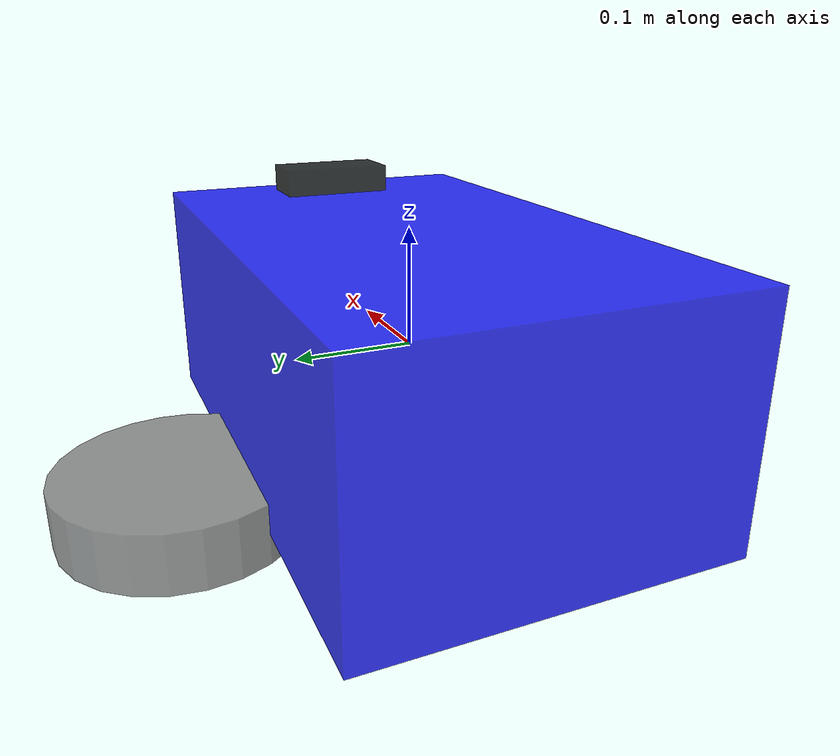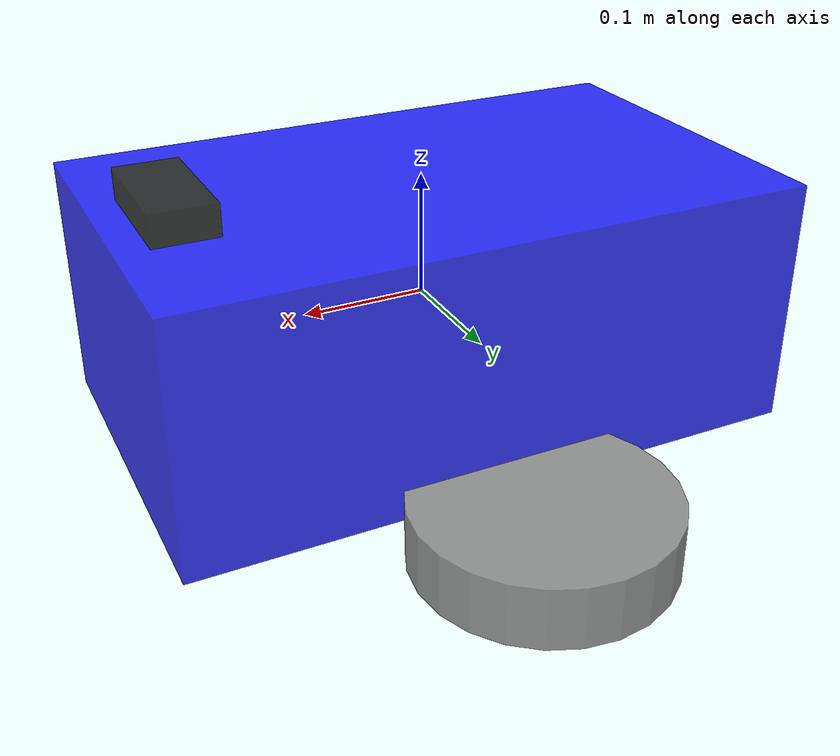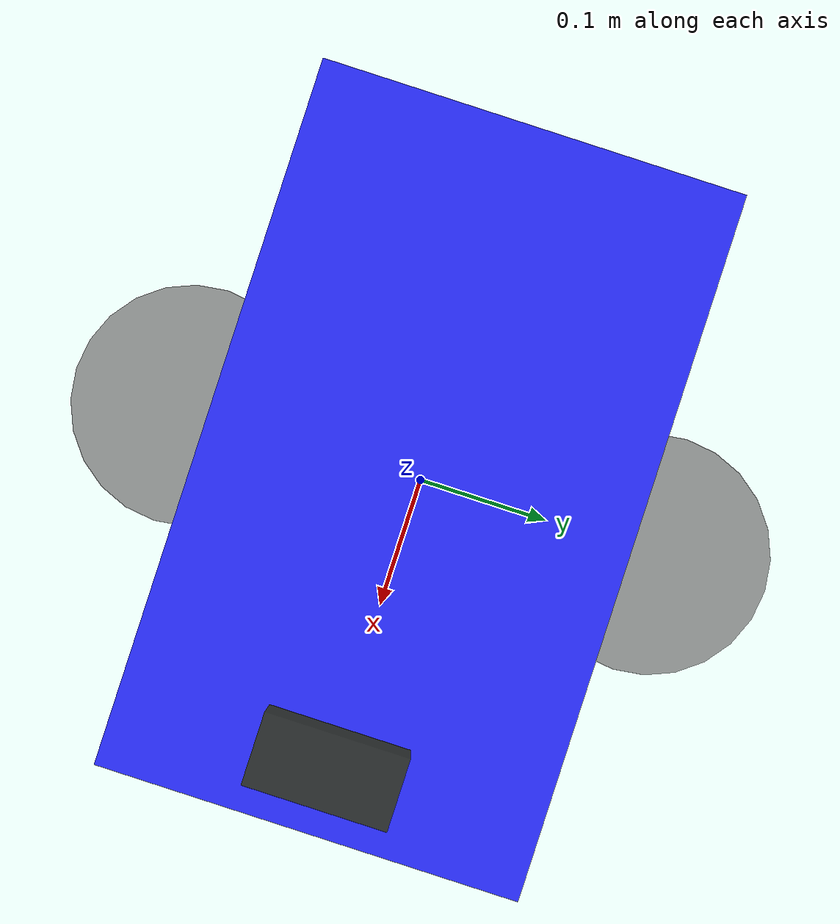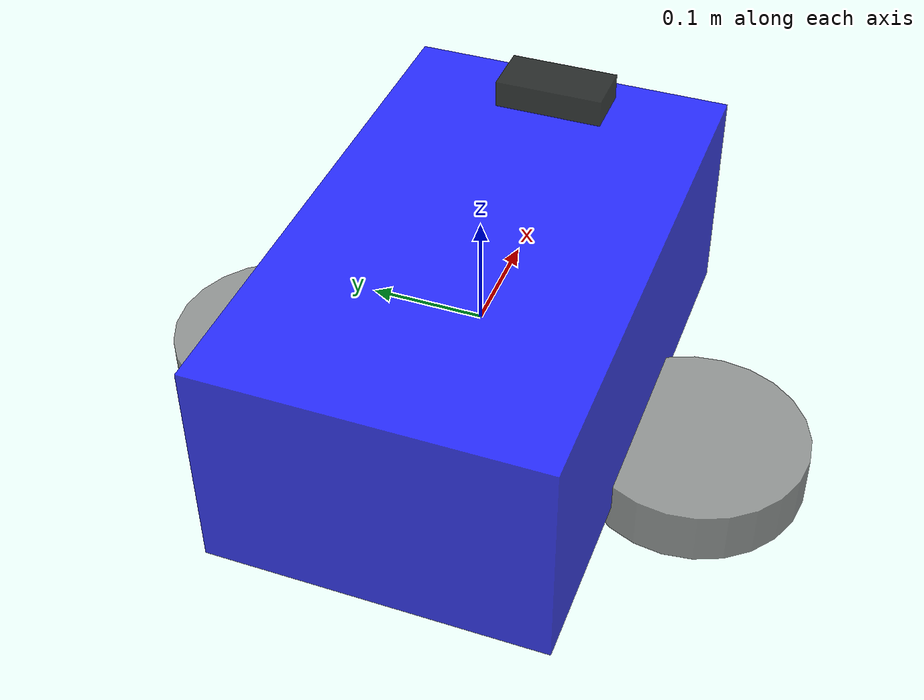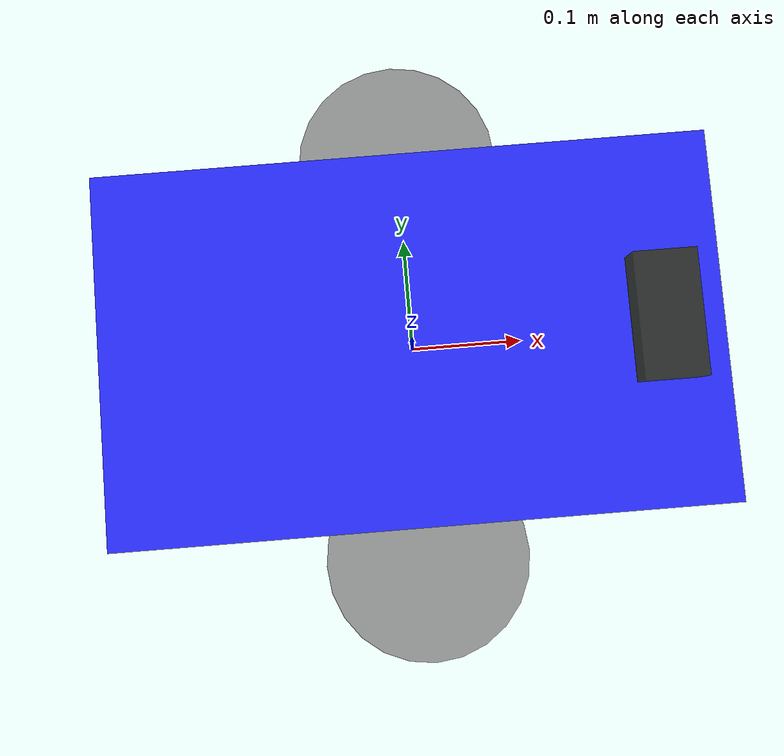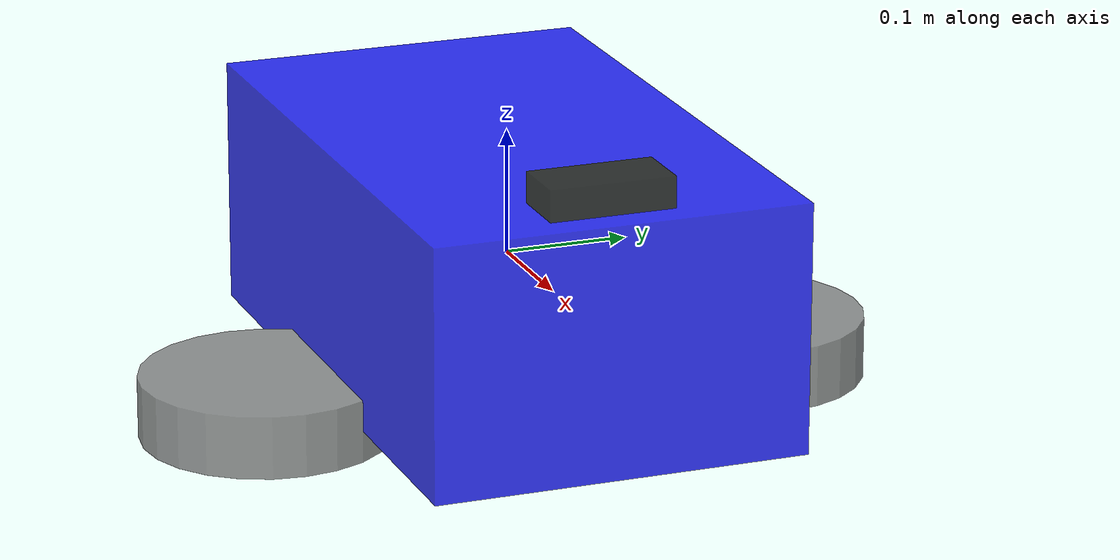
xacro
<?xml version="1.0" ?>
<robot name="simple_robot" xmlns:xacro="http://www.ros.org/wiki/xacro">

  <!-- Base link -->
  <link name="base_link">
    <visual>
      <geometry>
        <box size="0.5 0.3 0.2"/>
      </geometry>
      <material name="blue">
        <color rgba="0 0 1 0.8"/>
      </material>
    </visual>
    <collision>
      <geometry>
        <box size="0.5 0.3 0.2"/>
      </geometry>
    </collision>
    <inertial>
      <mass value="1.0"/>
      <inertia ixx="0.1" ixy="0.0" ixz="0.0" iyy="0.1" iyz="0.0" izz="0.1"/>
    </inertial>
  </link>

  <!-- Camera link -->
  <joint name="camera_joint" type="fixed">
    <parent link="base_link"/>
    <child link="camera_link"/>
    <origin xyz="0.2 0 0.1" rpy="0 0 0"/>
  </joint>

  <link name="camera_link">
    <visual>
      <geometry>
        <box size="0.05 0.1 0.05"/>
      </geometry>
      <material name="black">
        <color rgba="0 0 0 0.8"/>
      </material>
    </visual>
  </link>

  <!-- Wheels -->
  <joint name="wheel_left_joint" type="continuous">
    <parent link="base_link"/>
    <child link="wheel_left"/>
    <origin xyz="0 0.2 -0.1" rpy="0 0 0"/>
    <axis xyz="0 1 0"/>
  </joint>

  <link name="wheel_left">
    <visual>
      <geometry>
        <cylinder radius="0.1" length="0.05"/>
      </geometry>
      <material name="gray">
        <color rgba="0.5 0.5 0.5 0.8"/>
      </material>
    </visual>
    <collision>
      <geometry>
        <cylinder radius="0.1" length="0.05"/>
      </geometry>
    </collision>
    <inertial>
      <mass value="0.2"/>
      <inertia ixx="0.001" ixy="0.0" ixz="0.0" iyy="0.001" iyz="0.0" izz="0.001"/>
    </inertial>
  </link>

  <joint name="wheel_right_joint" type="continuous">
    <parent link="base_link"/>
    <child link="wheel_right"/>
    <origin xyz="0 -0.2 -0.1" rpy="0 0 0"/>
    <axis xyz="0 1 0"/>
  </joint>

  <link name="wheel_right">
    <visual>
      <geometry>
        <cylinder radius="0.1" length="0.05"/>
      </geometry>
      <material name="gray">
        <color rgba="0.5 0.5 0.5 0.8"/>
      </material>
    </visual>
    <collision>
      <geometry>
        <cylinder radius="0.1" length="0.05"/>
      </geometry>
    </collision>
    <inertial>
      <mass value="0.2"/>
      <inertia ixx="0.001" ixy="0.0" ixz="0.0" iyy="0.001" iyz="0.0" izz="0.001"/>
    </inertial>
  </link>

</robot>
